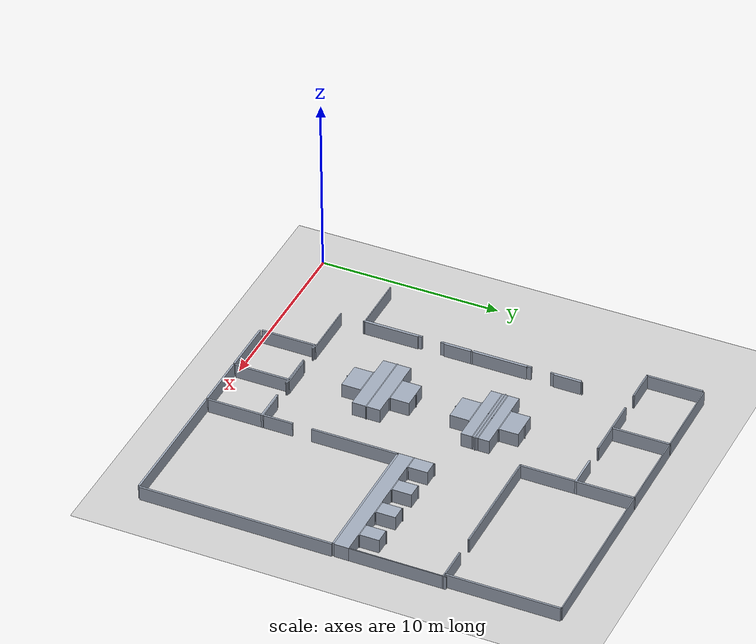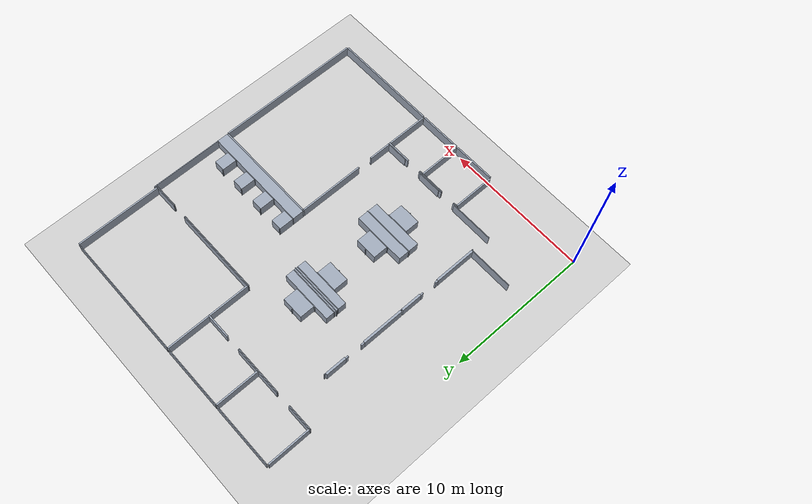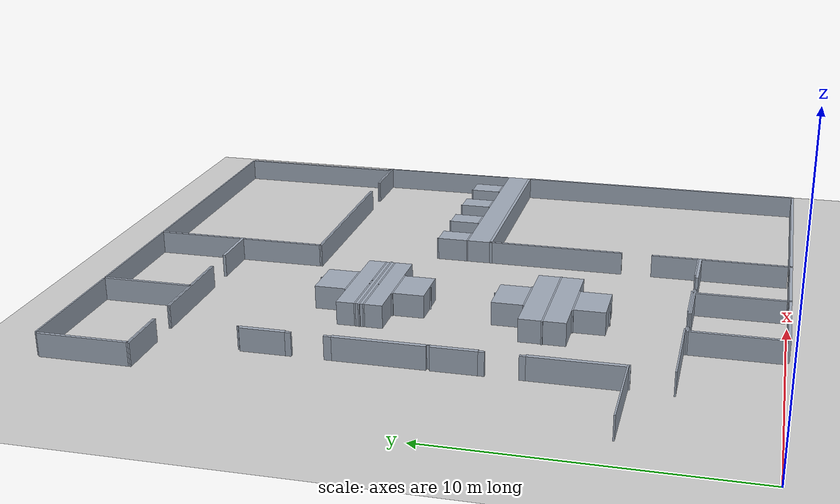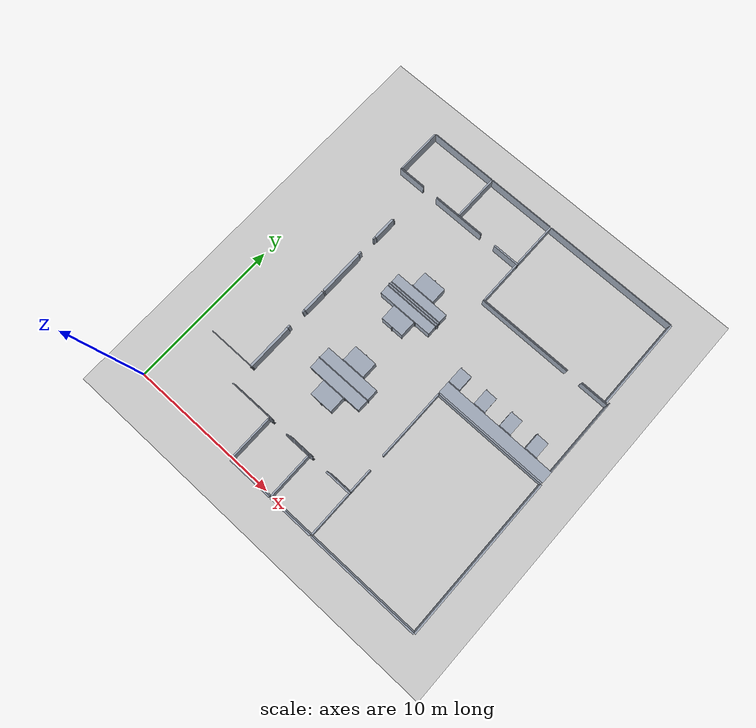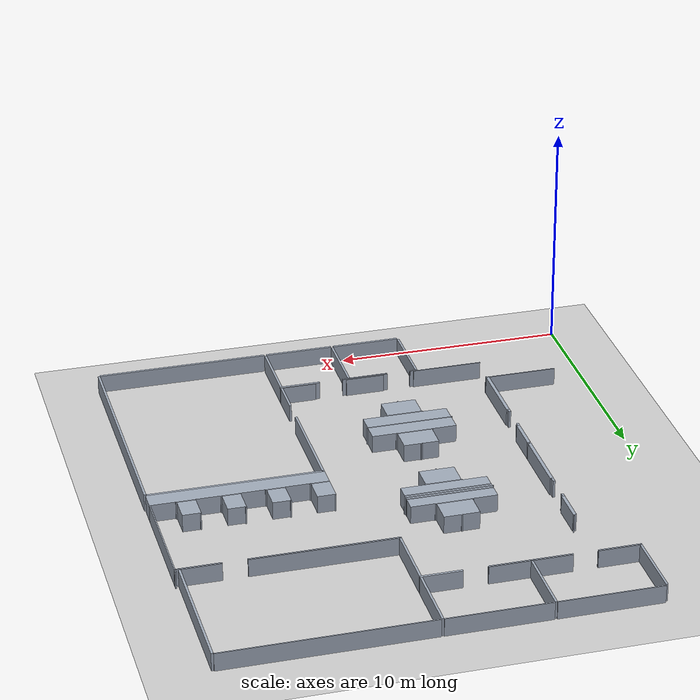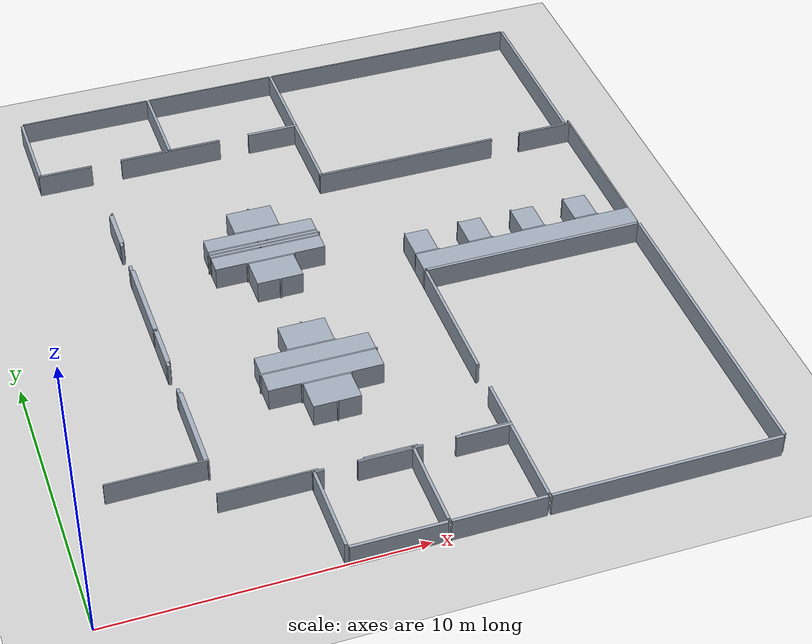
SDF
<sdf version="1.6">
 <world name="default">
  <include><uri>model://ground_plane</uri></include>
  <include><uri>model://sun</uri></include>
  <model name="slam_office_obstacles">
   <static>true</static>
   <link name="wall_5">
    <pose>5.0000 22.5750 0.4 0 0 0</pose>
    <collision name="collision"><geometry><box><size>4.5000 0.0500 0.8</size></box></geometry></collision>
    <visual name="visual">
     <geometry><box><size>4.5000 0.0500 0.8</size></box></geometry>
     <material><ambient>0.62 0.66 0.72 1</ambient><diffuse>0.62 0.66 0.72 1</diffuse></material>
    </visual>
   </link>
   <link name="wall_6">
    <pose>9.6000 22.5750 0.4 0 0 0</pose>
    <collision name="collision"><geometry><box><size>4.5000 0.0500 0.8</size></box></geometry></collision>
    <visual name="visual">
     <geometry><box><size>4.5000 0.0500 0.8</size></box></geometry>
     <material><ambient>0.62 0.66 0.72 1</ambient><diffuse>0.62 0.66 0.72 1</diffuse></material>
    </visual>
   </link>
   <link name="wall_7">
    <pose>16.4500 22.5750 0.4 0 0 0</pose>
    <collision name="collision"><geometry><box><size>9.0000 0.0500 0.8</size></box></geometry></collision>
    <visual name="visual">
     <geometry><box><size>9.0000 0.0500 0.8</size></box></geometry>
     <material><ambient>0.62 0.66 0.72 1</ambient><diffuse>0.62 0.66 0.72 1</diffuse></material>
    </visual>
   </link>
   <link name="wall_15">
    <pose>7.3000 21.0250 0.4 0 0 0</pose>
    <collision name="collision"><geometry><box><size>0.1000 3.0500 0.8</size></box></geometry></collision>
    <visual name="visual">
     <geometry><box><size>0.1000 3.0500 0.8</size></box></geometry>
     <material><ambient>0.62 0.66 0.72 1</ambient><diffuse>0.62 0.66 0.72 1</diffuse></material>
    </visual>
   </link>
   <link name="wall_16">
    <pose>11.9000 21.0250 0.4 0 0 0</pose>
    <collision name="collision"><geometry><box><size>0.1000 3.0500 0.8</size></box></geometry></collision>
    <visual name="visual">
     <geometry><box><size>0.1000 3.0500 0.8</size></box></geometry>
     <material><ambient>0.62 0.66 0.72 1</ambient><diffuse>0.62 0.66 0.72 1</diffuse></material>
    </visual>
   </link>
   <link name="wall_18">
    <pose>2.7000 21.0000 0.4 0 0 0</pose>
    <collision name="collision"><geometry><box><size>0.1000 3.0000 0.8</size></box></geometry></collision>
    <visual name="visual">
     <geometry><box><size>0.1000 3.0000 0.8</size></box></geometry>
     <material><ambient>0.62 0.66 0.72 1</ambient><diffuse>0.62 0.66 0.72 1</diffuse></material>
    </visual>
   </link>
   <link name="wall_30">
    <pose>2.6750 19.4750 0.4 0 0 0</pose>
    <collision name="collision"><geometry><box><size>0.0500 0.0500 0.8</size></box></geometry></collision>
    <visual name="visual">
     <geometry><box><size>0.0500 0.0500 0.8</size></box></geometry>
     <material><ambient>0.62 0.66 0.72 1</ambient><diffuse>0.62 0.66 0.72 1</diffuse></material>
    </visual>
   </link>
   <link name="wall_31">
    <pose>3.6250 19.4750 0.4 0 0 0</pose>
    <collision name="collision"><geometry><box><size>1.7500 0.0500 0.8</size></box></geometry></collision>
    <visual name="visual">
     <geometry><box><size>1.7500 0.0500 0.8</size></box></geometry>
     <material><ambient>0.62 0.66 0.72 1</ambient><diffuse>0.62 0.66 0.72 1</diffuse></material>
    </visual>
   </link>
   <link name="wall_32">
    <pose>6.4000 19.4750 0.4 0 0 0</pose>
    <collision name="collision"><geometry><box><size>1.7000 0.0500 0.8</size></box></geometry></collision>
    <visual name="visual">
     <geometry><box><size>1.7000 0.0500 0.8</size></box></geometry>
     <material><ambient>0.62 0.66 0.72 1</ambient><diffuse>0.62 0.66 0.72 1</diffuse></material>
    </visual>
   </link>
   <link name="wall_33">
    <pose>8.2250 19.4750 0.4 0 0 0</pose>
    <collision name="collision"><geometry><box><size>1.7500 0.0500 0.8</size></box></geometry></collision>
    <visual name="visual">
     <geometry><box><size>1.7500 0.0500 0.8</size></box></geometry>
     <material><ambient>0.62 0.66 0.72 1</ambient><diffuse>0.62 0.66 0.72 1</diffuse></material>
    </visual>
   </link>
   <link name="wall_35">
    <pose>11.0500 19.4500 0.4 0 0 0</pose>
    <collision name="collision"><geometry><box><size>1.8000 0.1000 0.8</size></box></geometry></collision>
    <visual name="visual">
     <geometry><box><size>1.8000 0.1000 0.8</size></box></geometry>
     <material><ambient>0.62 0.66 0.72 1</ambient><diffuse>0.62 0.66 0.72 1</diffuse></material>
    </visual>
   </link>
   <link name="wall_41">
    <pose>3.5750 19.4250 0.4 0 0 0</pose>
    <collision name="collision"><geometry><box><size>1.8500 0.0500 0.8</size></box></geometry></collision>
    <visual name="visual">
     <geometry><box><size>1.8500 0.0500 0.8</size></box></geometry>
     <material><ambient>0.62 0.66 0.72 1</ambient><diffuse>0.62 0.66 0.72 1</diffuse></material>
    </visual>
   </link>
   <link name="wall_42">
    <pose>7.3250 19.4250 0.4 0 0 0</pose>
    <collision name="collision"><geometry><box><size>3.5500 0.0500 0.8</size></box></geometry></collision>
    <visual name="visual">
     <geometry><box><size>3.5500 0.0500 0.8</size></box></geometry>
     <material><ambient>0.62 0.66 0.72 1</ambient><diffuse>0.62 0.66 0.72 1</diffuse></material>
    </visual>
   </link>
   <link name="wall_61">
    <pose>4.5750 16.6750 0.4 0 0 0</pose>
    <collision name="collision"><geometry><box><size>0.0500 0.0500 0.8</size></box></geometry></collision>
    <visual name="visual">
     <geometry><box><size>0.0500 0.0500 0.8</size></box></geometry>
     <material><ambient>0.62 0.66 0.72 1</ambient><diffuse>0.62 0.66 0.72 1</diffuse></material>
    </visual>
   </link>
   <link name="wall_73">
    <pose>21.0000 19.5250 0.4 0 0 0</pose>
    <collision name="collision"><geometry><box><size>0.1000 6.0500 0.8</size></box></geometry></collision>
    <visual name="visual">
     <geometry><box><size>0.1000 6.0500 0.8</size></box></geometry>
     <material><ambient>0.62 0.66 0.72 1</ambient><diffuse>0.62 0.66 0.72 1</diffuse></material>
    </visual>
   </link>
   <link name="wall_74">
    <pose>11.9000 17.9500 0.4 0 0 0</pose>
    <collision name="collision"><geometry><box><size>0.1000 2.9000 0.8</size></box></geometry></collision>
    <visual name="visual">
     <geometry><box><size>0.1000 2.9000 0.8</size></box></geometry>
     <material><ambient>0.62 0.66 0.72 1</ambient><diffuse>0.62 0.66 0.72 1</diffuse></material>
    </visual>
   </link>
   <link name="wall_96">
    <pose>21.1750 16.5250 0.4 0 0 0</pose>
    <collision name="collision"><geometry><box><size>0.0500 0.1500 0.8</size></box></geometry></collision>
    <visual name="visual">
     <geometry><box><size>0.0500 0.1500 0.8</size></box></geometry>
     <material><ambient>0.62 0.66 0.72 1</ambient><diffuse>0.62 0.66 0.72 1</diffuse></material>
    </visual>
   </link>
   <link name="wall_97">
    <pose>11.8750 16.4750 0.4 0 0 0</pose>
    <collision name="collision"><geometry><box><size>0.0500 0.0500 0.8</size></box></geometry></collision>
    <visual name="visual">
     <geometry><box><size>0.0500 0.0500 0.8</size></box></geometry>
     <material><ambient>0.62 0.66 0.72 1</ambient><diffuse>0.62 0.66 0.72 1</diffuse></material>
    </visual>
   </link>
   <link name="wall_98">
    <pose>15.0750 16.4750 0.4 0 0 0</pose>
    <collision name="collision"><geometry><box><size>6.2500 0.0500 0.8</size></box></geometry></collision>
    <visual name="visual">
     <geometry><box><size>6.2500 0.0500 0.8</size></box></geometry>
     <material><ambient>0.62 0.66 0.72 1</ambient><diffuse>0.62 0.66 0.72 1</diffuse></material>
    </visual>
   </link>
   <link name="wall_99">
    <pose>20.1000 16.4750 0.4 0 0 0</pose>
    <collision name="collision"><geometry><box><size>1.7000 0.0500 0.8</size></box></geometry></collision>
    <visual name="visual">
     <geometry><box><size>1.7000 0.0500 0.8</size></box></geometry>
     <material><ambient>0.62 0.66 0.72 1</ambient><diffuse>0.62 0.66 0.72 1</diffuse></material>
    </visual>
   </link>
   <link name="wall_100">
    <pose>15.0250 16.4250 0.4 0 0 0</pose>
    <collision name="collision"><geometry><box><size>6.3500 0.0500 0.8</size></box></geometry></collision>
    <visual name="visual">
     <geometry><box><size>6.3500 0.0500 0.8</size></box></geometry>
     <material><ambient>0.62 0.66 0.72 1</ambient><diffuse>0.62 0.66 0.72 1</diffuse></material>
    </visual>
   </link>
   <link name="wall_101">
    <pose>20.2250 16.4250 0.4 0 0 0</pose>
    <collision name="collision"><geometry><box><size>1.9500 0.0500 0.8</size></box></geometry></collision>
    <visual name="visual">
     <geometry><box><size>1.9500 0.0500 0.8</size></box></geometry>
     <material><ambient>0.62 0.66 0.72 1</ambient><diffuse>0.62 0.66 0.72 1</diffuse></material>
    </visual>
   </link>
   <link name="wall_102">
    <pose>8.9750 15.4250 0.4 0 0 0</pose>
    <collision name="collision"><geometry><box><size>0.0500 0.0500 0.8</size></box></geometry></collision>
    <visual name="visual">
     <geometry><box><size>0.0500 0.0500 0.8</size></box></geometry>
     <material><ambient>0.62 0.66 0.72 1</ambient><diffuse>0.62 0.66 0.72 1</diffuse></material>
    </visual>
   </link>
   <link name="wall_126">
    <pose>4.5250 15.8500 0.4 0 0 0</pose>
    <collision name="collision"><geometry><box><size>0.1500 1.5000 0.8</size></box></geometry></collision>
    <visual name="visual">
     <geometry><box><size>0.1500 1.5000 0.8</size></box></geometry>
     <material><ambient>0.62 0.66 0.72 1</ambient><diffuse>0.62 0.66 0.72 1</diffuse></material>
    </visual>
   </link>
   <link name="wall_131">
    <pose>4.5000 15.0000 0.4 0 0 0</pose>
    <collision name="collision"><geometry><box><size>0.1000 0.2000 0.8</size></box></geometry></collision>
    <visual name="visual">
     <geometry><box><size>0.1000 0.2000 0.8</size></box></geometry>
     <material><ambient>0.62 0.66 0.72 1</ambient><diffuse>0.62 0.66 0.72 1</diffuse></material>
    </visual>
   </link>
   <link name="wall_133">
    <pose>8.9750 14.8750 0.4 0 0 0</pose>
    <collision name="collision"><geometry><box><size>1.5500 1.0500 0.8</size></box></geometry></collision>
    <visual name="visual">
     <geometry><box><size>1.5500 1.0500 0.8</size></box></geometry>
     <material><ambient>0.62 0.66 0.72 1</ambient><diffuse>0.62 0.66 0.72 1</diffuse></material>
    </visual>
   </link>
   <link name="wall_134">
    <pose>8.9750 14.3250 0.4 0 0 0</pose>
    <collision name="collision"><geometry><box><size>1.6500 0.0500 0.8</size></box></geometry></collision>
    <visual name="visual">
     <geometry><box><size>1.6500 0.0500 0.8</size></box></geometry>
     <material><ambient>0.62 0.66 0.72 1</ambient><diffuse>0.62 0.66 0.72 1</diffuse></material>
    </visual>
   </link>
   <link name="wall_135">
    <pose>8.9750 14.0000 0.4 0 0 0</pose>
    <collision name="collision"><geometry><box><size>3.7500 0.6000 0.8</size></box></geometry></collision>
    <visual name="visual">
     <geometry><box><size>3.7500 0.6000 0.8</size></box></geometry>
     <material><ambient>0.62 0.66 0.72 1</ambient><diffuse>0.62 0.66 0.72 1</diffuse></material>
    </visual>
   </link>
   <link name="wall_136">
    <pose>7.9500 13.6750 0.4 0 0 0</pose>
    <collision name="collision"><geometry><box><size>1.7000 0.0500 0.8</size></box></geometry></collision>
    <visual name="visual">
     <geometry><box><size>1.7000 0.0500 0.8</size></box></geometry>
     <material><ambient>0.62 0.66 0.72 1</ambient><diffuse>0.62 0.66 0.72 1</diffuse></material>
    </visual>
   </link>
   <link name="wall_137">
    <pose>8.9750 13.6750 0.4 0 0 0</pose>
    <collision name="collision"><geometry><box><size>0.2500 0.0500 0.8</size></box></geometry></collision>
    <visual name="visual">
     <geometry><box><size>0.2500 0.0500 0.8</size></box></geometry>
     <material><ambient>0.62 0.66 0.72 1</ambient><diffuse>0.62 0.66 0.72 1</diffuse></material>
    </visual>
   </link>
   <link name="wall_138">
    <pose>10.0000 13.6750 0.4 0 0 0</pose>
    <collision name="collision"><geometry><box><size>1.7000 0.0500 0.8</size></box></geometry></collision>
    <visual name="visual">
     <geometry><box><size>1.7000 0.0500 0.8</size></box></geometry>
     <material><ambient>0.62 0.66 0.72 1</ambient><diffuse>0.62 0.66 0.72 1</diffuse></material>
    </visual>
   </link>
   <link name="wall_139">
    <pose>4.5000 13.7250 0.4 0 0 0</pose>
    <collision name="collision"><geometry><box><size>0.1000 0.2500 0.8</size></box></geometry></collision>
    <visual name="visual">
     <geometry><box><size>0.1000 0.2500 0.8</size></box></geometry>
     <material><ambient>0.62 0.66 0.72 1</ambient><diffuse>0.62 0.66 0.72 1</diffuse></material>
    </visual>
   </link>
   <link name="wall_140">
    <pose>8.9750 13.6000 0.4 0 0 0</pose>
    <collision name="collision"><geometry><box><size>3.7500 0.1000 0.8</size></box></geometry></collision>
    <visual name="visual">
     <geometry><box><size>3.7500 0.1000 0.8</size></box></geometry>
     <material><ambient>0.62 0.66 0.72 1</ambient><diffuse>0.62 0.66 0.72 1</diffuse></material>
    </visual>
   </link>
   <link name="wall_141">
    <pose>8.9750 13.5250 0.4 0 0 0</pose>
    <collision name="collision"><geometry><box><size>3.8500 0.0500 0.8</size></box></geometry></collision>
    <visual name="visual">
     <geometry><box><size>3.8500 0.0500 0.8</size></box></geometry>
     <material><ambient>0.62 0.66 0.72 1</ambient><diffuse>0.62 0.66 0.72 1</diffuse></material>
    </visual>
   </link>
   <link name="wall_143">
    <pose>8.9750 13.4500 0.4 0 0 0</pose>
    <collision name="collision"><geometry><box><size>3.7500 0.1000 0.8</size></box></geometry></collision>
    <visual name="visual">
     <geometry><box><size>3.7500 0.1000 0.8</size></box></geometry>
     <material><ambient>0.62 0.66 0.72 1</ambient><diffuse>0.62 0.66 0.72 1</diffuse></material>
    </visual>
   </link>
   <link name="wall_144">
    <pose>7.9500 13.3750 0.4 0 0 0</pose>
    <collision name="collision"><geometry><box><size>1.7000 0.0500 0.8</size></box></geometry></collision>
    <visual name="visual">
     <geometry><box><size>1.7000 0.0500 0.8</size></box></geometry>
     <material><ambient>0.62 0.66 0.72 1</ambient><diffuse>0.62 0.66 0.72 1</diffuse></material>
    </visual>
   </link>
   <link name="wall_145">
    <pose>9.8500 13.3750 0.4 0 0 0</pose>
    <collision name="collision"><geometry><box><size>2.0000 0.0500 0.8</size></box></geometry></collision>
    <visual name="visual">
     <geometry><box><size>2.0000 0.0500 0.8</size></box></geometry>
     <material><ambient>0.62 0.66 0.72 1</ambient><diffuse>0.62 0.66 0.72 1</diffuse></material>
    </visual>
   </link>
   <link name="wall_160">
    <pose>8.9750 13.0500 0.4 0 0 0</pose>
    <collision name="collision"><geometry><box><size>3.7500 0.6000 0.8</size></box></geometry></collision>
    <visual name="visual">
     <geometry><box><size>3.7500 0.6000 0.8</size></box></geometry>
     <material><ambient>0.62 0.66 0.72 1</ambient><diffuse>0.62 0.66 0.72 1</diffuse></material>
    </visual>
   </link>
   <link name="wall_161">
    <pose>8.9750 12.7250 0.4 0 0 0</pose>
    <collision name="collision"><geometry><box><size>1.6500 0.0500 0.8</size></box></geometry></collision>
    <visual name="visual">
     <geometry><box><size>1.6500 0.0500 0.8</size></box></geometry>
     <material><ambient>0.62 0.66 0.72 1</ambient><diffuse>0.62 0.66 0.72 1</diffuse></material>
    </visual>
   </link>
   <link name="wall_162">
    <pose>13.5750 12.5250 0.4 0 0 0</pose>
    <collision name="collision"><geometry><box><size>0.0500 0.0500 0.8</size></box></geometry></collision>
    <visual name="visual">
     <geometry><box><size>0.0500 0.0500 0.8</size></box></geometry>
     <material><ambient>0.62 0.66 0.72 1</ambient><diffuse>0.62 0.66 0.72 1</diffuse></material>
    </visual>
   </link>
   <link name="wall_163">
    <pose>15.4750 12.5250 0.4 0 0 0</pose>
    <collision name="collision"><geometry><box><size>0.0500 0.0500 0.8</size></box></geometry></collision>
    <visual name="visual">
     <geometry><box><size>0.0500 0.0500 0.8</size></box></geometry>
     <material><ambient>0.62 0.66 0.72 1</ambient><diffuse>0.62 0.66 0.72 1</diffuse></material>
    </visual>
   </link>
   <link name="wall_164">
    <pose>17.3750 12.5250 0.4 0 0 0</pose>
    <collision name="collision"><geometry><box><size>0.0500 0.0500 0.8</size></box></geometry></collision>
    <visual name="visual">
     <geometry><box><size>0.0500 0.0500 0.8</size></box></geometry>
     <material><ambient>0.62 0.66 0.72 1</ambient><diffuse>0.62 0.66 0.72 1</diffuse></material>
    </visual>
   </link>
   <link name="wall_165">
    <pose>19.2750 12.5250 0.4 0 0 0</pose>
    <collision name="collision"><geometry><box><size>0.0500 0.0500 0.8</size></box></geometry></collision>
    <visual name="visual">
     <geometry><box><size>0.0500 0.0500 0.8</size></box></geometry>
     <material><ambient>0.62 0.66 0.72 1</ambient><diffuse>0.62 0.66 0.72 1</diffuse></material>
    </visual>
   </link>
   <link name="wall_196">
    <pose>8.9750 12.1750 0.4 0 0 0</pose>
    <collision name="collision"><geometry><box><size>1.5500 1.0500 0.8</size></box></geometry></collision>
    <visual name="visual">
     <geometry><box><size>1.5500 1.0500 0.8</size></box></geometry>
     <material><ambient>0.62 0.66 0.72 1</ambient><diffuse>0.62 0.66 0.72 1</diffuse></material>
    </visual>
   </link>
   <link name="wall_197">
    <pose>8.9750 11.6250 0.4 0 0 0</pose>
    <collision name="collision"><geometry><box><size>0.0500 0.0500 0.8</size></box></geometry></collision>
    <visual name="visual">
     <geometry><box><size>0.0500 0.0500 0.8</size></box></geometry>
     <material><ambient>0.62 0.66 0.72 1</ambient><diffuse>0.62 0.66 0.72 1</diffuse></material>
    </visual>
   </link>
   <link name="wall_198">
    <pose>13.9500 11.9750 0.4 0 0 0</pose>
    <collision name="collision"><geometry><box><size>0.8000 1.0500 0.8</size></box></geometry></collision>
    <visual name="visual">
     <geometry><box><size>0.8000 1.0500 0.8</size></box></geometry>
     <material><ambient>0.62 0.66 0.72 1</ambient><diffuse>0.62 0.66 0.72 1</diffuse></material>
    </visual>
   </link>
   <link name="wall_199">
    <pose>15.8500 11.9750 0.4 0 0 0</pose>
    <collision name="collision"><geometry><box><size>0.8000 1.0500 0.8</size></box></geometry></collision>
    <visual name="visual">
     <geometry><box><size>0.8000 1.0500 0.8</size></box></geometry>
     <material><ambient>0.62 0.66 0.72 1</ambient><diffuse>0.62 0.66 0.72 1</diffuse></material>
    </visual>
   </link>
   <link name="wall_200">
    <pose>17.7500 11.9750 0.4 0 0 0</pose>
    <collision name="collision"><geometry><box><size>0.8000 1.0500 0.8</size></box></geometry></collision>
    <visual name="visual">
     <geometry><box><size>0.8000 1.0500 0.8</size></box></geometry>
     <material><ambient>0.62 0.66 0.72 1</ambient><diffuse>0.62 0.66 0.72 1</diffuse></material>
    </visual>
   </link>
   <link name="wall_201">
    <pose>19.6500 11.9750 0.4 0 0 0</pose>
    <collision name="collision"><geometry><box><size>0.8000 1.0500 0.8</size></box></geometry></collision>
    <visual name="visual">
     <geometry><box><size>0.8000 1.0500 0.8</size></box></geometry>
     <material><ambient>0.62 0.66 0.72 1</ambient><diffuse>0.62 0.66 0.72 1</diffuse></material>
    </visual>
   </link>
   <link name="wall_202">
    <pose>21.1750 13.9000 0.4 0 0 0</pose>
    <collision name="collision"><geometry><box><size>0.0500 5.0000 0.8</size></box></geometry></collision>
    <visual name="visual">
     <geometry><box><size>0.0500 5.0000 0.8</size></box></geometry>
     <material><ambient>0.62 0.66 0.72 1</ambient><diffuse>0.62 0.66 0.72 1</diffuse></material>
    </visual>
   </link>
   <link name="wall_203">
    <pose>13.9750 11.4250 0.4 0 0 0</pose>
    <collision name="collision"><geometry><box><size>0.8500 0.0500 0.8</size></box></geometry></collision>
    <visual name="visual">
     <geometry><box><size>0.8500 0.0500 0.8</size></box></geometry>
     <material><ambient>0.62 0.66 0.72 1</ambient><diffuse>0.62 0.66 0.72 1</diffuse></material>
    </visual>
   </link>
   <link name="wall_204">
    <pose>15.8750 11.4250 0.4 0 0 0</pose>
    <collision name="collision"><geometry><box><size>0.8500 0.0500 0.8</size></box></geometry></collision>
    <visual name="visual">
     <geometry><box><size>0.8500 0.0500 0.8</size></box></geometry>
     <material><ambient>0.62 0.66 0.72 1</ambient><diffuse>0.62 0.66 0.72 1</diffuse></material>
    </visual>
   </link>
   <link name="wall_205">
    <pose>17.7750 11.4250 0.4 0 0 0</pose>
    <collision name="collision"><geometry><box><size>0.8500 0.0500 0.8</size></box></geometry></collision>
    <visual name="visual">
     <geometry><box><size>0.8500 0.0500 0.8</size></box></geometry>
     <material><ambient>0.62 0.66 0.72 1</ambient><diffuse>0.62 0.66 0.72 1</diffuse></material>
    </visual>
   </link>
   <link name="wall_206">
    <pose>19.6750 11.4250 0.4 0 0 0</pose>
    <collision name="collision"><geometry><box><size>0.8500 0.0500 0.8</size></box></geometry></collision>
    <visual name="visual">
     <geometry><box><size>0.8500 0.0500 0.8</size></box></geometry>
     <material><ambient>0.62 0.66 0.72 1</ambient><diffuse>0.62 0.66 0.72 1</diffuse></material>
    </visual>
   </link>
   <link name="wall_231">
    <pose>4.5250 12.1000 0.4 0 0 0</pose>
    <collision name="collision"><geometry><box><size>0.1500 3.0000 0.8</size></box></geometry></collision>
    <visual name="visual">
     <geometry><box><size>0.1500 3.0000 0.8</size></box></geometry>
     <material><ambient>0.62 0.66 0.72 1</ambient><diffuse>0.62 0.66 0.72 1</diffuse></material>
    </visual>
   </link>
   <link name="wall_233">
    <pose>17.3750 11.0000 0.4 0 0 0</pose>
    <collision name="collision"><geometry><box><size>7.6500 0.8000 0.8</size></box></geometry></collision>
    <visual name="visual">
     <geometry><box><size>7.6500 0.8000 0.8</size></box></geometry>
     <material><ambient>0.62 0.66 0.72 1</ambient><diffuse>0.62 0.66 0.72 1</diffuse></material>
    </visual>
   </link>
   <link name="wall_237">
    <pose>4.5750 10.5500 0.4 0 0 0</pose>
    <collision name="collision"><geometry><box><size>0.0500 0.1000 0.8</size></box></geometry></collision>
    <visual name="visual">
     <geometry><box><size>0.0500 0.1000 0.8</size></box></geometry>
     <material><ambient>0.62 0.66 0.72 1</ambient><diffuse>0.62 0.66 0.72 1</diffuse></material>
    </visual>
   </link>
   <link name="wall_238">
    <pose>13.5750 10.5500 0.4 0 0 0</pose>
    <collision name="collision"><geometry><box><size>0.0500 0.1000 0.8</size></box></geometry></collision>
    <visual name="visual">
     <geometry><box><size>0.0500 0.1000 0.8</size></box></geometry>
     <material><ambient>0.62 0.66 0.72 1</ambient><diffuse>0.62 0.66 0.72 1</diffuse></material>
    </visual>
   </link>
   <link name="wall_239">
    <pose>17.4000 10.5500 0.4 0 0 0</pose>
    <collision name="collision"><geometry><box><size>7.5000 0.1000 0.8</size></box></geometry></collision>
    <visual name="visual">
     <geometry><box><size>7.5000 0.1000 0.8</size></box></geometry>
     <material><ambient>0.62 0.66 0.72 1</ambient><diffuse>0.62 0.66 0.72 1</diffuse></material>
    </visual>
   </link>
   <link name="wall_240">
    <pose>8.9750 9.4250 0.4 0 0 0</pose>
    <collision name="collision"><geometry><box><size>0.0500 0.0500 0.8</size></box></geometry></collision>
    <visual name="visual">
     <geometry><box><size>0.0500 0.0500 0.8</size></box></geometry>
     <material><ambient>0.62 0.66 0.72 1</ambient><diffuse>0.62 0.66 0.72 1</diffuse></material>
    </visual>
   </link>
   <link name="wall_241">
    <pose>4.5250 9.7500 0.4 0 0 0</pose>
    <collision name="collision"><geometry><box><size>0.1500 1.5000 0.8</size></box></geometry></collision>
    <visual name="visual">
     <geometry><box><size>0.1500 1.5000 0.8</size></box></geometry>
     <material><ambient>0.62 0.66 0.72 1</ambient><diffuse>0.62 0.66 0.72 1</diffuse></material>
    </visual>
   </link>
   <link name="wall_242">
    <pose>4.5000 8.9000 0.4 0 0 0</pose>
    <collision name="collision"><geometry><box><size>0.1000 0.2000 0.8</size></box></geometry></collision>
    <visual name="visual">
     <geometry><box><size>0.1000 0.2000 0.8</size></box></geometry>
     <material><ambient>0.62 0.66 0.72 1</ambient><diffuse>0.62 0.66 0.72 1</diffuse></material>
    </visual>
   </link>
   <link name="wall_257">
    <pose>8.9750 8.8750 0.4 0 0 0</pose>
    <collision name="collision"><geometry><box><size>1.5500 1.0500 0.8</size></box></geometry></collision>
    <visual name="visual">
     <geometry><box><size>1.5500 1.0500 0.8</size></box></geometry>
     <material><ambient>0.62 0.66 0.72 1</ambient><diffuse>0.62 0.66 0.72 1</diffuse></material>
    </visual>
   </link>
   <link name="wall_258">
    <pose>8.9750 8.3250 0.4 0 0 0</pose>
    <collision name="collision"><geometry><box><size>1.6500 0.0500 0.8</size></box></geometry></collision>
    <visual name="visual">
     <geometry><box><size>1.6500 0.0500 0.8</size></box></geometry>
     <material><ambient>0.62 0.66 0.72 1</ambient><diffuse>0.62 0.66 0.72 1</diffuse></material>
    </visual>
   </link>
   <link name="wall_268">
    <pose>8.9750 7.9250 0.4 0 0 0</pose>
    <collision name="collision"><geometry><box><size>3.7500 0.7500 0.8</size></box></geometry></collision>
    <visual name="visual">
     <geometry><box><size>3.7500 0.7500 0.8</size></box></geometry>
     <material><ambient>0.62 0.66 0.72 1</ambient><diffuse>0.62 0.66 0.72 1</diffuse></material>
    </visual>
   </link>
   <link name="wall_269">
    <pose>4.5000 7.6500 0.4 0 0 0</pose>
    <collision name="collision"><geometry><box><size>0.1000 0.2000 0.8</size></box></geometry></collision>
    <visual name="visual">
     <geometry><box><size>0.1000 0.2000 0.8</size></box></geometry>
     <material><ambient>0.62 0.66 0.72 1</ambient><diffuse>0.62 0.66 0.72 1</diffuse></material>
    </visual>
   </link>
   <link name="wall_291">
    <pose>8.9750 7.5250 0.4 0 0 0</pose>
    <collision name="collision"><geometry><box><size>3.8500 0.0500 0.8</size></box></geometry></collision>
    <visual name="visual">
     <geometry><box><size>3.8500 0.0500 0.8</size></box></geometry>
     <material><ambient>0.62 0.66 0.72 1</ambient><diffuse>0.62 0.66 0.72 1</diffuse></material>
    </visual>
   </link>
   <link name="wall_293">
    <pose>8.9750 7.1250 0.4 0 0 0</pose>
    <collision name="collision"><geometry><box><size>3.7500 0.7500 0.8</size></box></geometry></collision>
    <visual name="visual">
     <geometry><box><size>3.7500 0.7500 0.8</size></box></geometry>
     <material><ambient>0.62 0.66 0.72 1</ambient><diffuse>0.62 0.66 0.72 1</diffuse></material>
    </visual>
   </link>
   <link name="wall_294">
    <pose>8.9750 6.7250 0.4 0 0 0</pose>
    <collision name="collision"><geometry><box><size>1.6500 0.0500 0.8</size></box></geometry></collision>
    <visual name="visual">
     <geometry><box><size>1.6500 0.0500 0.8</size></box></geometry>
     <material><ambient>0.62 0.66 0.72 1</ambient><diffuse>0.62 0.66 0.72 1</diffuse></material>
    </visual>
   </link>
   <link name="wall_318">
    <pose>13.6000 8.1500 0.4 0 0 0</pose>
    <collision name="collision"><geometry><box><size>0.1000 4.7000 0.8</size></box></geometry></collision>
    <visual name="visual">
     <geometry><box><size>0.1000 4.7000 0.8</size></box></geometry>
     <material><ambient>0.62 0.66 0.72 1</ambient><diffuse>0.62 0.66 0.72 1</diffuse></material>
    </visual>
   </link>
   <link name="wall_319">
    <pose>8.9750 6.1750 0.4 0 0 0</pose>
    <collision name="collision"><geometry><box><size>1.5500 1.0500 0.8</size></box></geometry></collision>
    <visual name="visual">
     <geometry><box><size>1.5500 1.0500 0.8</size></box></geometry>
     <material><ambient>0.62 0.66 0.72 1</ambient><diffuse>0.62 0.66 0.72 1</diffuse></material>
    </visual>
   </link>
   <link name="wall_320">
    <pose>8.9750 5.6250 0.4 0 0 0</pose>
    <collision name="collision"><geometry><box><size>0.0500 0.0500 0.8</size></box></geometry></collision>
    <visual name="visual">
     <geometry><box><size>0.0500 0.0500 0.8</size></box></geometry>
     <material><ambient>0.62 0.66 0.72 1</ambient><diffuse>0.62 0.66 0.72 1</diffuse></material>
    </visual>
   </link>
   <link name="wall_326">
    <pose>4.5250 6.0500 0.4 0 0 0</pose>
    <collision name="collision"><geometry><box><size>0.1500 3.0000 0.8</size></box></geometry></collision>
    <visual name="visual">
     <geometry><box><size>0.1500 3.0000 0.8</size></box></geometry>
     <material><ambient>0.62 0.66 0.72 1</ambient><diffuse>0.62 0.66 0.72 1</diffuse></material>
    </visual>
   </link>
   <link name="wall_341">
    <pose>3.0000 4.5250 0.4 0 0 0</pose>
    <collision name="collision"><geometry><box><size>3.2000 0.0500 0.8</size></box></geometry></collision>
    <visual name="visual">
     <geometry><box><size>3.2000 0.0500 0.8</size></box></geometry>
     <material><ambient>0.62 0.66 0.72 1</ambient><diffuse>0.62 0.66 0.72 1</diffuse></material>
    </visual>
   </link>
   <link name="wall_346">
    <pose>4.5750 4.4750 0.4 0 0 0</pose>
    <collision name="collision"><geometry><box><size>0.0500 0.0500 0.8</size></box></geometry></collision>
    <visual name="visual">
     <geometry><box><size>0.0500 0.0500 0.8</size></box></geometry>
     <material><ambient>0.62 0.66 0.72 1</ambient><diffuse>0.62 0.66 0.72 1</diffuse></material>
    </visual>
   </link>
   <link name="wall_348">
    <pose>13.6000 3.9500 0.4 0 0 0</pose>
    <collision name="collision"><geometry><box><size>0.1000 1.6000 0.8</size></box></geometry></collision>
    <visual name="visual">
     <geometry><box><size>0.1000 1.6000 0.8</size></box></geometry>
     <material><ambient>0.62 0.66 0.72 1</ambient><diffuse>0.62 0.66 0.72 1</diffuse></material>
    </visual>
   </link>
   <link name="wall_349">
    <pose>6.0000 3.1250 0.4 0 0 0</pose>
    <collision name="collision"><geometry><box><size>3.1000 0.0500 0.8</size></box></geometry></collision>
    <visual name="visual">
     <geometry><box><size>3.1000 0.0500 0.8</size></box></geometry>
     <material><ambient>0.62 0.66 0.72 1</ambient><diffuse>0.62 0.66 0.72 1</diffuse></material>
    </visual>
   </link>
   <link name="wall_350">
    <pose>9.8000 3.1250 0.4 0 0 0</pose>
    <collision name="collision"><geometry><box><size>1.7000 0.0500 0.8</size></box></geometry></collision>
    <visual name="visual">
     <geometry><box><size>1.7000 0.0500 0.8</size></box></geometry>
     <material><ambient>0.62 0.66 0.72 1</ambient><diffuse>0.62 0.66 0.72 1</diffuse></material>
    </visual>
   </link>
   <link name="wall_351">
    <pose>12.8500 3.1250 0.4 0 0 0</pose>
    <collision name="collision"><geometry><box><size>1.6000 0.0500 0.8</size></box></geometry></collision>
    <visual name="visual">
     <geometry><box><size>1.6000 0.0500 0.8</size></box></geometry>
     <material><ambient>0.62 0.66 0.72 1</ambient><diffuse>0.62 0.66 0.72 1</diffuse></material>
    </visual>
   </link>
   <link name="wall_352">
    <pose>7.3750 3.0750 0.4 0 0 0</pose>
    <collision name="collision"><geometry><box><size>0.0500 0.0500 0.8</size></box></geometry></collision>
    <visual name="visual">
     <geometry><box><size>0.0500 0.0500 0.8</size></box></geometry>
     <material><ambient>0.62 0.66 0.72 1</ambient><diffuse>0.62 0.66 0.72 1</diffuse></material>
    </visual>
   </link>
   <link name="wall_353">
    <pose>7.5750 3.0750 0.4 0 0 0</pose>
    <collision name="collision"><geometry><box><size>0.2500 0.0500 0.8</size></box></geometry></collision>
    <visual name="visual">
     <geometry><box><size>0.2500 0.0500 0.8</size></box></geometry>
     <material><ambient>0.62 0.66 0.72 1</ambient><diffuse>0.62 0.66 0.72 1</diffuse></material>
    </visual>
   </link>
   <link name="wall_354">
    <pose>9.6000 3.0750 0.4 0 0 0</pose>
    <collision name="collision"><geometry><box><size>1.7000 0.0500 0.8</size></box></geometry></collision>
    <visual name="visual">
     <geometry><box><size>1.7000 0.0500 0.8</size></box></geometry>
     <material><ambient>0.62 0.66 0.72 1</ambient><diffuse>0.62 0.66 0.72 1</diffuse></material>
    </visual>
   </link>
   <link name="wall_355">
    <pose>10.6750 3.0750 0.4 0 0 0</pose>
    <collision name="collision"><geometry><box><size>0.2500 0.0500 0.8</size></box></geometry></collision>
    <visual name="visual">
     <geometry><box><size>0.2500 0.0500 0.8</size></box></geometry>
     <material><ambient>0.62 0.66 0.72 1</ambient><diffuse>0.62 0.66 0.72 1</diffuse></material>
    </visual>
   </link>
   <link name="wall_356">
    <pose>12.7500 3.0500 0.4 0 0 0</pose>
    <collision name="collision"><geometry><box><size>1.8000 0.1000 0.8</size></box></geometry></collision>
    <visual name="visual">
     <geometry><box><size>1.8000 0.1000 0.8</size></box></geometry>
     <material><ambient>0.62 0.66 0.72 1</ambient><diffuse>0.62 0.66 0.72 1</diffuse></material>
    </visual>
   </link>
   <link name="wall_357">
    <pose>7.5250 3.0250 0.4 0 0 0</pose>
    <collision name="collision"><geometry><box><size>0.3500 0.0500 0.8</size></box></geometry></collision>
    <visual name="visual">
     <geometry><box><size>0.3500 0.0500 0.8</size></box></geometry>
     <material><ambient>0.62 0.66 0.72 1</ambient><diffuse>0.62 0.66 0.72 1</diffuse></material>
    </visual>
   </link>
   <link name="wall_358">
    <pose>9.7750 3.0250 0.4 0 0 0</pose>
    <collision name="collision"><geometry><box><size>2.0500 0.0500 0.8</size></box></geometry></collision>
    <visual name="visual">
     <geometry><box><size>2.0500 0.0500 0.8</size></box></geometry>
     <material><ambient>0.62 0.66 0.72 1</ambient><diffuse>0.62 0.66 0.72 1</diffuse></material>
    </visual>
   </link>
   <link name="wall_363">
    <pose>7.4000 1.5250 0.4 0 0 0</pose>
    <collision name="collision"><geometry><box><size>0.1000 2.9500 0.8</size></box></geometry></collision>
    <visual name="visual">
     <geometry><box><size>0.1000 2.9500 0.8</size></box></geometry>
     <material><ambient>0.62 0.66 0.72 1</ambient><diffuse>0.62 0.66 0.72 1</diffuse></material>
    </visual>
   </link>
   <link name="wall_364">
    <pose>10.5000 1.5250 0.4 0 0 0</pose>
    <collision name="collision"><geometry><box><size>0.1000 2.9500 0.8</size></box></geometry></collision>
    <visual name="visual">
     <geometry><box><size>0.1000 2.9500 0.8</size></box></geometry>
     <material><ambient>0.62 0.66 0.72 1</ambient><diffuse>0.62 0.66 0.72 1</diffuse></material>
    </visual>
   </link>
   <link name="wall_365">
    <pose>13.6000 1.5250 0.4 0 0 0</pose>
    <collision name="collision"><geometry><box><size>0.1000 2.9500 0.8</size></box></geometry></collision>
    <visual name="visual">
     <geometry><box><size>0.1000 2.9500 0.8</size></box></geometry>
     <material><ambient>0.62 0.66 0.72 1</ambient><diffuse>0.62 0.66 0.72 1</diffuse></material>
    </visual>
   </link>
   <link name="wall_366">
    <pose>21.2000 5.2500 0.4 0 0 0</pose>
    <collision name="collision"><geometry><box><size>0.1000 10.5000 0.8</size></box></geometry></collision>
    <visual name="visual">
     <geometry><box><size>0.1000 10.5000 0.8</size></box></geometry>
     <material><ambient>0.62 0.66 0.72 1</ambient><diffuse>0.62 0.66 0.72 1</diffuse></material>
    </visual>
   </link>
   <link name="wall_371">
    <pose>8.9500 -0.0500 0.4 0 0 0</pose>
    <collision name="collision"><geometry><box><size>3.0000 0.1000 0.8</size></box></geometry></collision>
    <visual name="visual">
     <geometry><box><size>3.0000 0.1000 0.8</size></box></geometry>
     <material><ambient>0.62 0.66 0.72 1</ambient><diffuse>0.62 0.66 0.72 1</diffuse></material>
    </visual>
   </link>
   <link name="wall_372">
    <pose>12.0500 -0.0500 0.4 0 0 0</pose>
    <collision name="collision"><geometry><box><size>3.0000 0.1000 0.8</size></box></geometry></collision>
    <visual name="visual">
     <geometry><box><size>3.0000 0.1000 0.8</size></box></geometry>
     <material><ambient>0.62 0.66 0.72 1</ambient><diffuse>0.62 0.66 0.72 1</diffuse></material>
    </visual>
   </link>
   <link name="wall_373">
    <pose>17.4000 -0.0500 0.4 0 0 0</pose>
    <collision name="collision"><geometry><box><size>7.5000 0.1000 0.8</size></box></geometry></collision>
    <visual name="visual">
     <geometry><box><size>7.5000 0.1000 0.8</size></box></geometry>
     <material><ambient>0.62 0.66 0.72 1</ambient><diffuse>0.62 0.66 0.72 1</diffuse></material>
    </visual>
   </link>
  </model>
 </world>
</sdf>
